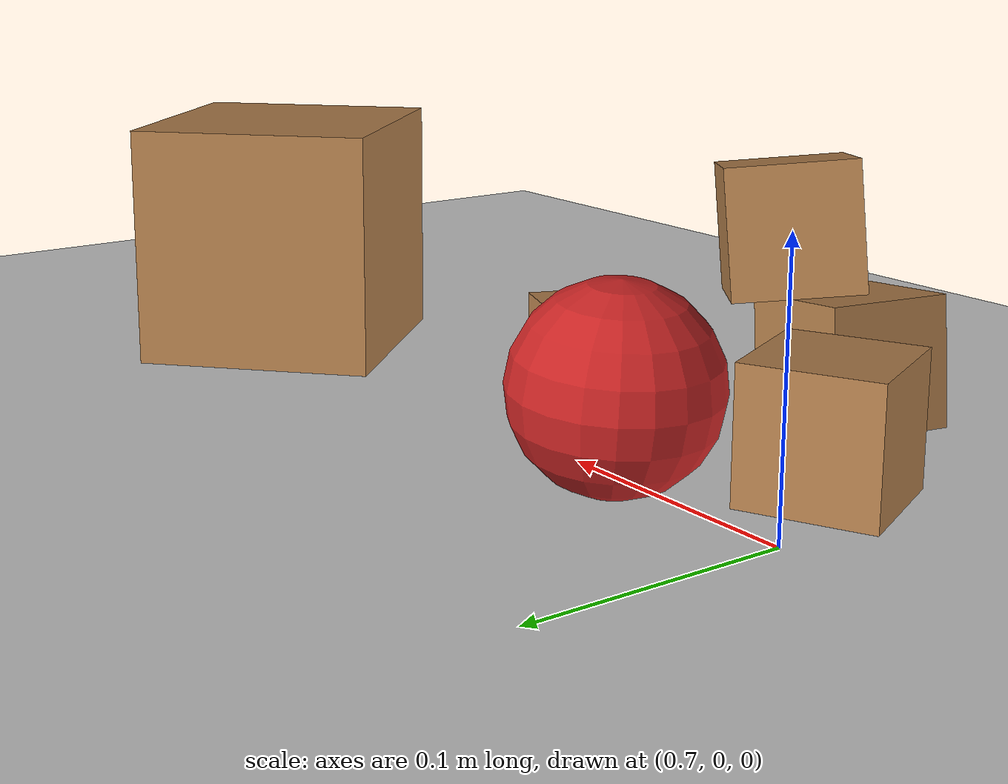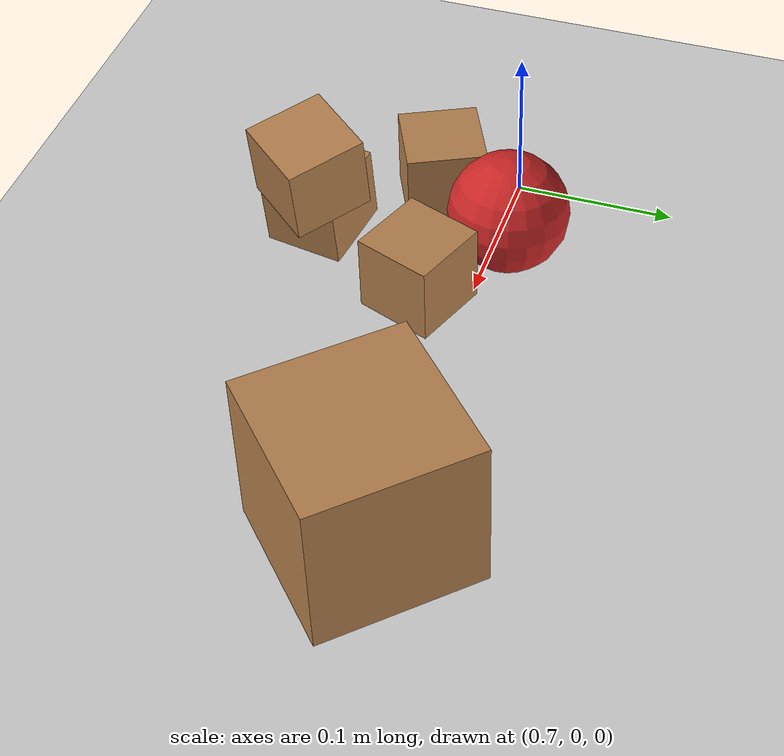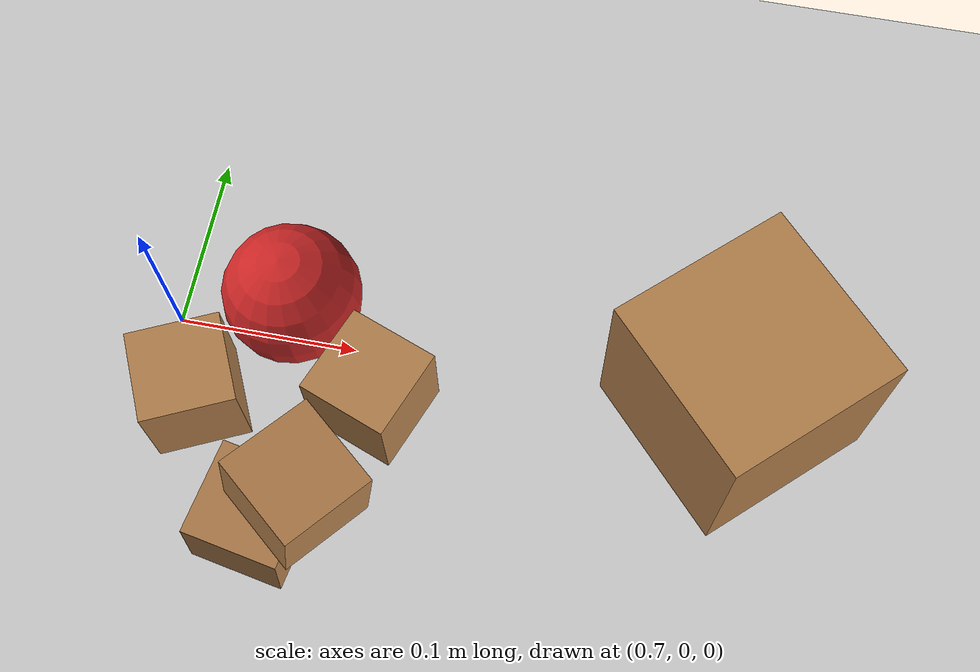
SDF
<sdf version="1.4">
 <world name="default">
  <light name="sun" type="directional">
   <pose>0 0 10 0 -0 0</pose>
   <diffuse>0.8 0.8 0.8 1</diffuse>
   <specular>0.2 0.2 0.2 1</specular>
   <attenuation>
    <range>1000</range>
    <constant>0.9</constant>
    <linear>0.01</linear>
    <quadratic>0.001</quadratic>
   </attenuation>
   <direction>-0.5 0.1 -0.9</direction>
  </light>
  <model name="ground_plane">
   <static>1</static>
   <link name="link">
    <collision name="collision">
     <geometry><plane><normal>0 0 1</normal><size>100 100</size></plane></geometry>
     <surface><friction><ode><mu>100</mu><mu2>50</mu2></ode></friction></surface>
    </collision>
    <visual name="visual">
     <cast_shadows>0</cast_shadows>
     <geometry><plane><normal>0 0 1</normal><size>100 100</size></plane></geometry>
     <material>
      <script><uri>file://media/materials/scripts/gazebo.material</uri><name>Gazebo/Grey</name></script>
     </material>
    </visual>
    <velocity_decay><linear>0</linear><angular>0</angular></velocity_decay>
   </link>
  </model>
  <physics type="ode">
   <max_step_size>0.001</max_step_size>
   <real_time_factor>1</real_time_factor>
   <real_time_update_rate>1000</real_time_update_rate>
   <gravity>0 0 -9.8</gravity>
  </physics>
  <scene><ambient>0.4 0.4 0.4 1</ambient><background>0.7 0.7 0.7 1</background><shadows>1</shadows></scene>
  <spherical_coordinates>
   <surface_model>EARTH_WGS84</surface_model>
   <latitude_deg>0</latitude_deg>
   <longitude_deg>0</longitude_deg>
   <elevation>0</elevation>
   <heading_deg>0</heading_deg>
  </spherical_coordinates>
  <model name="cricket_ball">
   <link name="link">
    <pose>0 0 0.0375 0 -0 0</pose>
    <inertial>
     <mass>0.1467</mass>
     <inertia>
      <ixx>8.25187e-05</ixx>
      <ixy>0</ixy>
      <ixz>0</ixz>
      <iyy>8.25187e-05</iyy>
      <iyz>0</iyz>
      <izz>8.25187e-05</izz>
     </inertia>
    </inertial>
    <collision name="collision"><geometry><sphere><radius>0.0375</radius></sphere></geometry></collision>
    <visual name="visual">
     <geometry><sphere><radius>0.0375</radius></sphere></geometry>
     <material>
      <script><uri>file://media/materials/scripts/gazebo.material</uri><name>Gazebo/Red</name></script>
     </material>
    </visual>
    <velocity_decay><linear>0</linear><angular>0.005</angular></velocity_decay>
   </link>
   <pose>0.768798 0.011292 9.7e-05 -0.023966 -0.06773 0.272099</pose>
   <static>0</static>
  </model>
  <model name="wood_cube_5cm">
   <link name="link">
    <pose>0 0 0.025 0 -0 0</pose>
    <inertial>
     <mass>0.0565</mass>
     <inertia>
      <ixx>2.35417e-05</ixx>
      <ixy>0</ixy>
      <ixz>0</ixz>
      <iyy>2.35417e-05</iyy>
      <iyz>0</iyz>
      <izz>2.35417e-05</izz>
     </inertia>
    </inertial>
    <collision name="collision">
     <geometry><box><size>0.05 0.05 0.05</size></box></geometry>
     <surface><contact><ode><max_vel>0.1</max_vel><min_depth>0.001</min_depth></ode></contact></surface>
    </collision>
    <visual name="visual">
     <geometry><box><size>0.05 0.05 0.05</size></box></geometry>
     <material>
      <script><uri>file://media/materials/scripts/gazebo.material</uri><name>Gazebo/Wood</name></script>
     </material>
    </visual>
    <velocity_decay><linear>0</linear><angular>0</angular></velocity_decay>
   </link>
   <pose>0.711482 -0.022014 0.024993 1.57097 -0.000211 0.439788</pose>
   <static>0</static>
  </model>
  <model name="wood_cube_5cm_0">
   <link name="link">
    <pose>0 0 0.025 0 -0 0</pose>
    <inertial>
     <mass>0.0565</mass>
     <inertia>
      <ixx>2.35417e-05</ixx>
      <ixy>0</ixy>
      <ixz>0</ixz>
      <iyy>2.35417e-05</iyy>
      <iyz>0</iyz>
      <izz>2.35417e-05</izz>
     </inertia>
    </inertial>
    <collision name="collision">
     <geometry><box><size>0.05 0.05 0.05</size></box></geometry>
     <surface><contact><ode><max_vel>0.1</max_vel><min_depth>0.001</min_depth></ode></contact></surface>
    </collision>
    <visual name="visual">
     <geometry><box><size>0.05 0.05 0.05</size></box></geometry>
     <material>
      <script><uri>file://media/materials/scripts/gazebo.material</uri><name>Gazebo/Wood</name></script>
     </material>
    </visual>
    <velocity_decay><linear>0</linear><angular>0</angular></velocity_decay>
   </link>
   <pose>0.771359 -0.108126 0.001523 0.001322 0.099778 -0.172389</pose>
   <static>0</static>
  </model>
  <model name="wood_cube_5cm_1">
   <link name="link">
    <pose>0 0 0.025 0 -0 0</pose>
    <inertial>
     <mass>0.0565</mass>
     <inertia>
      <ixx>2.35417e-05</ixx>
      <ixy>0</ixy>
      <ixz>0</ixz>
      <iyy>2.35417e-05</iyy>
      <iyz>0</iyz>
      <izz>2.35417e-05</izz>
     </inertia>
    </inertial>
    <collision name="collision">
     <geometry><box><size>0.05 0.05 0.05</size></box></geometry>
     <surface><contact><ode><max_vel>0.1</max_vel><min_depth>0.001</min_depth></ode></contact></surface>
    </collision>
    <visual name="visual">
     <geometry><box><size>0.05 0.05 0.05</size></box></geometry>
     <material>
      <script><uri>file://media/materials/scripts/gazebo.material</uri><name>Gazebo/Wood</name></script>
     </material>
    </visual>
    <velocity_decay><linear>0</linear><angular>0</angular></velocity_decay>
   </link>
   <pose>0.817469 -0.029431 -3.7e-05 -0.000127 -0.000963 -0.366346</pose>
   <static>0</static>
  </model>
  <model name="wood_cube_5cm_2">
   <link name="link">
    <pose>0 0 0.025 0 -0 0</pose>
    <inertial>
     <mass>0.0565</mass>
     <inertia>
      <ixx>2.35417e-05</ixx>
      <ixy>0</ixy>
      <ixz>0</ixz>
      <iyy>2.35417e-05</iyy>
      <iyz>0</iyz>
      <izz>2.35417e-05</izz>
     </inertia>
    </inertial>
    <collision name="collision">
     <geometry><box><size>0.05 0.05 0.05</size></box></geometry>
     <surface><contact><ode><max_vel>0.1</max_vel><min_depth>0.001</min_depth></ode></contact></surface>
    </collision>
    <visual name="visual">
     <geometry><box><size>0.05 0.05 0.05</size></box></geometry>
     <material>
      <script><uri>file://media/materials/scripts/gazebo.material</uri><name>Gazebo/Wood</name></script>
     </material>
    </visual>
    <velocity_decay><linear>0</linear><angular>0</angular></velocity_decay>
   </link>
   <pose>0.798016 -0.102021 0.048751 -0.085742 0.110418 -0.686326</pose>
   <static>0</static>
  </model>
  <model name="wood_cube_10cm">
   <link name="link">
    <pose>0 0 0.05 0 -0 0</pose>
    <inertial>
     <mass>0.5167</mass>
     <inertia>
      <ixx>0.000861167</ixx>
      <ixy>0</ixy>
      <ixz>0</ixz>
      <iyy>0.000861167</iyy>
      <iyz>0</iyz>
      <izz>0.000861167</izz>
     </inertia>
    </inertial>
    <collision name="collision">
     <geometry><box><size>0.1 0.1 0.1</size></box></geometry>
     <surface><contact><ode><max_vel>0.1</max_vel><min_depth>0.001</min_depth></ode></contact></surface>
    </collision>
    <visual name="visual">
     <geometry><box><size>0.1 0.1 0.1</size></box></geometry>
     <material>
      <script><uri>file://media/materials/scripts/gazebo.material</uri><name>Gazebo/Wood</name></script>
     </material>
    </visual>
    <velocity_decay><linear>0</linear><angular>0</angular></velocity_decay>
   </link>
   <pose>1.00635 0.002004 -0.000266 0.002522 0.000133 0.747332</pose>
   <static>0</static>
  </model>
 </world>
</sdf>
